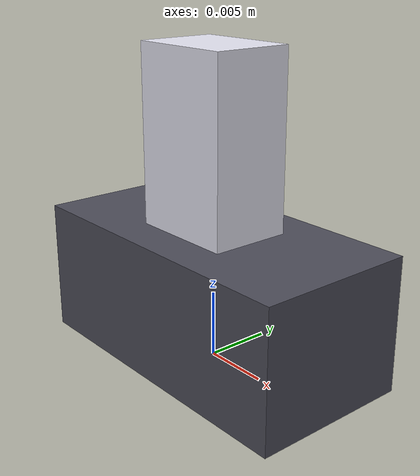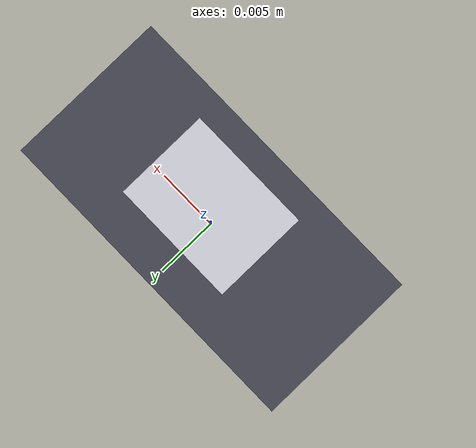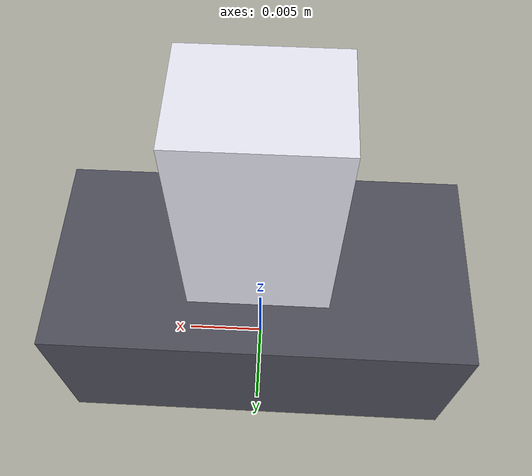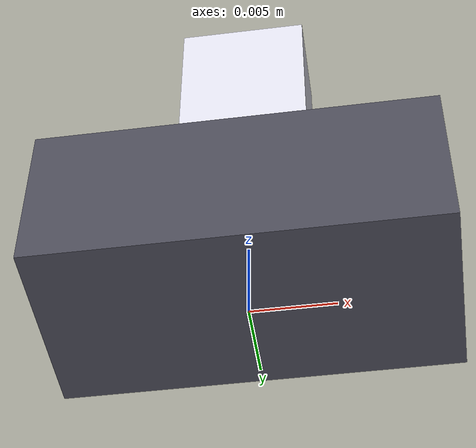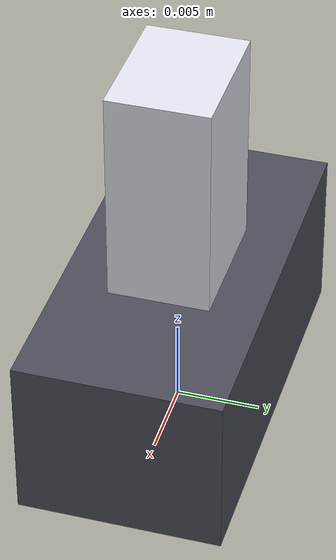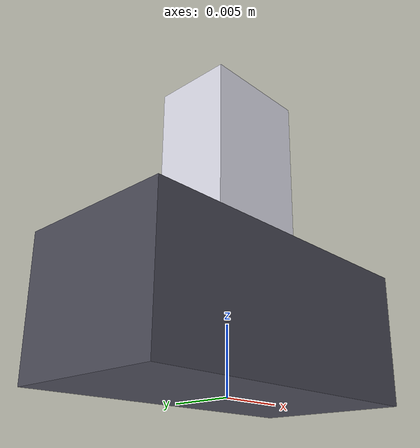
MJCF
<mujoco model="Switch_37">
  <asset>
    <material name="Switch_37_material" rgba="0.3 0.3 0.35 1"/>
  </asset>
  <worldbody>
    <body name="Switch_37">
      <geom name="Switch_37_base" type="box" pos="0 0 0.005" size="0.012 0.006 0.005" material="Switch_37_material"/>
      <geom name="Switch_37_toggle" type="box" pos="0 0 0.015" size="0.004 0.003 0.008" rgba="0.9 0.9 0.95 1"/>
    </body>
  </worldbody>
</mujoco>
